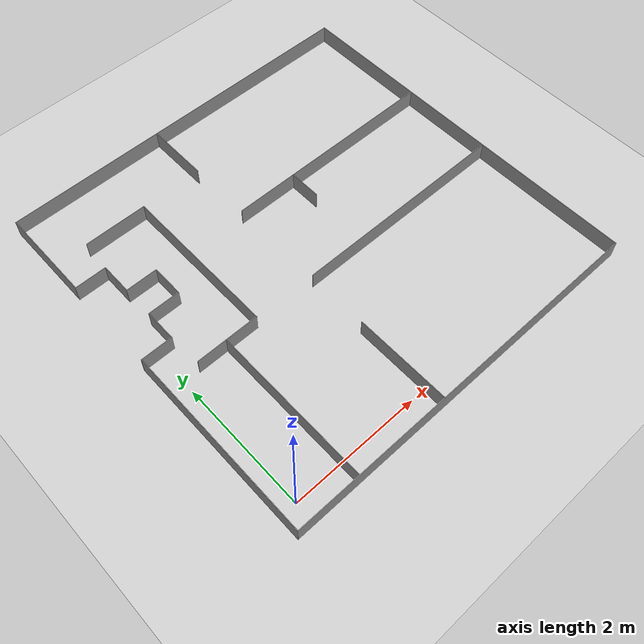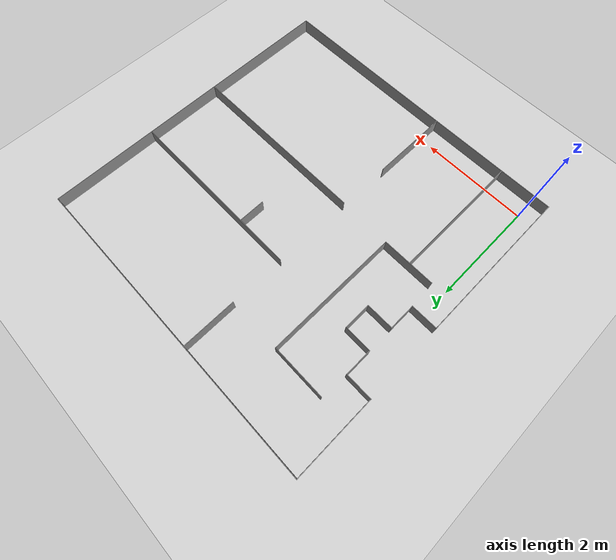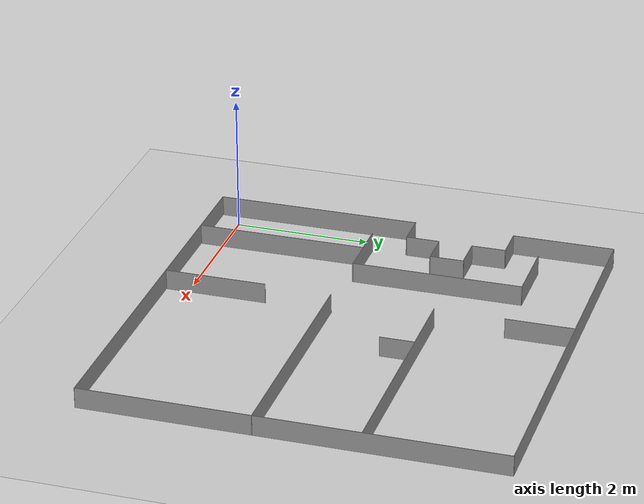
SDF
<sdf version="1.6">
 <world name="default">
  <light name="sun" type="directional">
   <pose>0 0 10 0 -0 0</pose>
   <diffuse>0.8 0.8 0.8 1</diffuse>
   <specular>0.2 0.2 0.2 1</specular>
   <attenuation>
    <range>1000</range>
    <constant>0.9</constant>
    <linear>0.01</linear>
    <quadratic>0.001</quadratic>
   </attenuation>
   <direction>-0.5 0.1 -0.9</direction>
  </light>
  <model name="ground_plane">
   <static>1</static>
   <link name="link">
    <collision name="collision">
     <geometry><plane><normal>0 0 1</normal><size>100 100</size></plane></geometry>
     <surface>
      <contact><collide_bitmask>65535</collide_bitmask></contact>
      <friction><ode><mu>100</mu><mu2>50</mu2></ode></friction>
     </surface>
    </collision>
    <visual name="visual">
     <cast_shadows>0</cast_shadows>
     <geometry><plane><normal>0 0 1</normal><size>100 100</size></plane></geometry>
     <material>
      <script><uri>file://media/materials/scripts/gazebo.material</uri><name>Gazebo/Grey</name></script>
     </material>
    </visual>
   </link>
  </model>
  <gravity>0 0 -9.8</gravity>
  <magnetic_field>6e-06 2.3e-05 -4.2e-05</magnetic_field>
  <atmosphere type="adiabatic"/>
  <physics name="default_physics" default="0" type="ode">
   <max_step_size>0.001</max_step_size>
   <real_time_factor>1</real_time_factor>
   <real_time_update_rate>1000</real_time_update_rate>
  </physics>
  <scene><ambient>0.4 0.4 0.4 1</ambient><background>0.7 0.7 0.7 1</background><shadows>1</shadows></scene>
  <audio><device>default</device></audio>
  <spherical_coordinates>
   <surface_model>EARTH_WGS84</surface_model>
   <latitude_deg>0</latitude_deg>
   <longitude_deg>0</longitude_deg>
   <elevation>0</elevation>
   <heading_deg>0</heading_deg>
  </spherical_coordinates>
  <model name="arena">
   <pose>2.72717 2.66142 0 0 -0 0</pose>
   <link name="Wall_1">
    <collision name="Wall_1_Collision">
     <geometry><box><size>6 0.01 0.3</size></box></geometry>
     <pose>0 0 0.15 0 -0 0</pose>
    </collision>
    <visual name="Wall_1_Visual">
     <pose>0 0 0.15 0 -0 0</pose>
     <geometry><box><size>6 0.01 0.3</size></box></geometry>
     <material>
      <script><uri>file://media/materials/scripts/gazebo.material</uri><name>Gazebo/Grey</name></script>
      <ambient>1 1 1 1</ambient>
     </material>
     <meta><layer>0</layer></meta>
    </visual>
    <pose>0.001988 -2.99751 0 0 -0 0</pose>
   </link>
   <link name="Wall_11">
    <collision name="Wall_11_Collision">
     <geometry><box><size>1.5 0.01 0.3</size></box></geometry>
     <pose>0 0 0.15 0 -0 0</pose>
    </collision>
    <visual name="Wall_11_Visual">
     <pose>0 0 0.15 0 -0 0</pose>
     <geometry><box><size>1.5 0.01 0.3</size></box></geometry>
     <material>
      <script><uri>file://media/materials/scripts/gazebo.material</uri><name>Gazebo/Grey</name></script>
      <ambient>1 1 1 1</ambient>
     </material>
     <meta><layer>0</layer></meta>
    </visual>
    <pose>-2.99841 2.25251 0 0 -0 1.5708</pose>
   </link>
   <link name="Wall_20">
    <collision name="Wall_20_Collision">
     <geometry><box><size>0.5 0.01 0.3</size></box></geometry>
     <pose>0 0 0.15 0 -0 0</pose>
    </collision>
    <visual name="Wall_20_Visual">
     <pose>0 0 0.15 0 -0 0</pose>
     <geometry><box><size>0.5 0.01 0.3</size></box></geometry>
     <material>
      <script><uri>file://media/materials/scripts/gazebo.material</uri><name>Gazebo/Grey</name></script>
      <ambient>1 1 1 1</ambient>
     </material>
     <meta><layer>0</layer></meta>
    </visual>
    <pose>-2.75425 1.50057 0 0 -0 0</pose>
   </link>
   <link name="Wall_22">
    <collision name="Wall_22_Collision">
     <geometry><box><size>0.5 0.01 0.3</size></box></geometry>
     <pose>0 0 0.15 0 -0 0</pose>
    </collision>
    <visual name="Wall_22_Visual">
     <pose>0 0 0.15 0 -0 0</pose>
     <geometry><box><size>0.5 0.01 0.3</size></box></geometry>
     <material>
      <script><uri>file://media/materials/scripts/gazebo.material</uri><name>Gazebo/Grey</name></script>
      <ambient>1 1 1 1</ambient>
     </material>
     <meta><layer>0</layer></meta>
    </visual>
    <pose>-2.50969 1.25495 0 0 -0 1.5708</pose>
   </link>
   <link name="Wall_24">
    <collision name="Wall_24_Collision">
     <geometry><box><size>0.5 0.01 0.3</size></box></geometry>
     <pose>0 0 0.15 0 -0 0</pose>
    </collision>
    <visual name="Wall_24_Visual">
     <pose>0 0 0.15 0 -0 0</pose>
     <geometry><box><size>0.5 0.01 0.3</size></box></geometry>
     <material>
      <script><uri>file://media/materials/scripts/gazebo.material</uri><name>Gazebo/Grey</name></script>
      <ambient>1 1 1 1</ambient>
     </material>
     <meta><layer>0</layer></meta>
    </visual>
    <pose>-2.26459 1.00122 0 0 -0 0</pose>
   </link>
   <link name="Wall_28">
    <collision name="Wall_28_Collision">
     <geometry><box><size>0.5 0.01 0.3</size></box></geometry>
     <pose>0 0 0.15 0 -0 0</pose>
    </collision>
    <visual name="Wall_28_Visual">
     <pose>0 0 0.15 0 -0 0</pose>
     <geometry><box><size>0.5 0.01 0.3</size></box></geometry>
     <material>
      <script><uri>file://media/materials/scripts/gazebo.material</uri><name>Gazebo/Grey</name></script>
      <ambient>1 1 1 1</ambient>
     </material>
     <meta><layer>0</layer></meta>
    </visual>
    <pose>-2.01503 0.755808 0 0 -0 -1.5708</pose>
   </link>
   <link name="Wall_30">
    <collision name="Wall_30_Collision">
     <geometry><box><size>0.5 0.01 0.3</size></box></geometry>
     <pose>0 0 0.15 0 -0 0</pose>
    </collision>
    <visual name="Wall_30_Visual">
     <pose>0 0 0.15 0 -0 0</pose>
     <geometry><box><size>0.5 0.01 0.3</size></box></geometry>
     <material>
      <script><uri>file://media/materials/scripts/gazebo.material</uri><name>Gazebo/Grey</name></script>
      <ambient>1 1 1 1</ambient>
     </material>
     <meta><layer>0</layer></meta>
    </visual>
    <pose>-2.25991 0.503524 0 0 -0 0</pose>
   </link>
   <link name="Wall_34">
    <collision name="Wall_34_Collision">
     <geometry><box><size>0.5 0.01 0.3</size></box></geometry>
     <pose>0 0 0.15 0 -0 0</pose>
    </collision>
    <visual name="Wall_34_Visual">
     <pose>0 0 0.15 0 -0 0</pose>
     <geometry><box><size>0.5 0.01 0.3</size></box></geometry>
     <material>
      <script><uri>file://media/materials/scripts/gazebo.material</uri><name>Gazebo/Grey</name></script>
      <ambient>1 1 1 1</ambient>
     </material>
     <meta><layer>0</layer></meta>
    </visual>
    <pose>-2.50907 0.257403 0 0 -0 -1.5708</pose>
   </link>
   <link name="Wall_36">
    <collision name="Wall_36_Collision">
     <geometry><box><size>0.5 0.01 0.3</size></box></geometry>
     <pose>0 0 0.15 0 -0 0</pose>
    </collision>
    <visual name="Wall_36_Visual">
     <pose>0 0 0.15 0 -0 0</pose>
     <geometry><box><size>0.5 0.01 0.3</size></box></geometry>
     <material>
      <script><uri>file://media/materials/scripts/gazebo.material</uri><name>Gazebo/Grey</name></script>
      <ambient>1 1 1 1</ambient>
     </material>
     <meta><layer>0</layer></meta>
    </visual>
    <pose>-2.75227 0.011599 0 0 -0 0</pose>
   </link>
   <link name="Wall_38">
    <collision name="Wall_38_Collision">
     <geometry><box><size>3.012 0.01 0.3</size></box></geometry>
     <pose>0 0 0.15 0 -0 0</pose>
    </collision>
    <visual name="Wall_38_Visual">
     <pose>0 0 0.15 0 -0 0</pose>
     <geometry><box><size>3.012 0.01 0.3</size></box></geometry>
     <material>
      <script><uri>file://media/materials/scripts/gazebo.material</uri><name>Gazebo/Grey</name></script>
      <ambient>1 1 1 1</ambient>
     </material>
     <meta><layer>0</layer></meta>
    </visual>
    <pose>-2.99601 -1.49551 0 0 -0 -1.5708</pose>
   </link>
   <link name="Wall_41">
    <collision name="Wall_41_Collision">
     <geometry><box><size>1 0.01 0.3</size></box></geometry>
     <pose>0 0 0.15 0 -0 0</pose>
    </collision>
    <visual name="Wall_41_Visual">
     <pose>0 0 0.15 0 -0 0</pose>
     <geometry><box><size>1 0.01 0.3</size></box></geometry>
     <material>
      <script><uri>file://media/materials/scripts/gazebo.material</uri><name>Gazebo/Grey</name></script>
      <ambient>1 1 1 1</ambient>
     </material>
     <meta><layer>0</layer></meta>
    </visual>
    <pose>-0.498279 2.49812 0 0 -0 1.5708</pose>
   </link>
   <link name="Wall_44">
    <collision name="Wall_44_Collision">
     <geometry><box><size>3.5 0.01 0.3</size></box></geometry>
     <pose>0 0 0.15 0 -0 0</pose>
    </collision>
    <visual name="Wall_44_Visual">
     <pose>0 0 0.15 0 -0 0</pose>
     <geometry><box><size>3.5 0.01 0.3</size></box></geometry>
     <material>
      <script><uri>file://media/materials/scripts/gazebo.material</uri><name>Gazebo/Grey</name></script>
      <ambient>1 1 1 1</ambient>
     </material>
     <meta><layer>0</layer></meta>
    </visual>
    <pose>1.25071 0.982331 0 0 -0 0</pose>
   </link>
   <link name="Wall_46">
    <collision name="Wall_46_Collision">
     <geometry><box><size>0.5 0.01 0.3</size></box></geometry>
     <pose>0 0 0.15 0 -0 0</pose>
    </collision>
    <visual name="Wall_46_Visual">
     <pose>0 0 0.15 0 -0 0</pose>
     <geometry><box><size>0.5 0.01 0.3</size></box></geometry>
     <material>
      <script><uri>file://media/materials/scripts/gazebo.material</uri><name>Gazebo/Grey</name></script>
      <ambient>1 1 1 1</ambient>
     </material>
     <meta><layer>0</layer></meta>
    </visual>
    <pose>0.496275 0.729352 0 0 -0 1.5708</pose>
   </link>
   <link name="Wall_48">
    <collision name="Wall_48_Collision">
     <geometry><box><size>3.5 0.01 0.3</size></box></geometry>
     <pose>0 0 0.15 0 -0 0</pose>
    </collision>
    <visual name="Wall_48_Visual">
     <pose>0 0 0.15 0 -0 0</pose>
     <geometry><box><size>3.5 0.01 0.3</size></box></geometry>
     <material>
      <script><uri>file://media/materials/scripts/gazebo.material</uri><name>Gazebo/Grey</name></script>
      <ambient>1 1 1 1</ambient>
     </material>
     <meta><layer>0</layer></meta>
    </visual>
    <pose>1.25425 -0.520404 0 0 -0 0</pose>
   </link>
   <link name="Wall_50">
    <collision name="Wall_50_Collision">
     <geometry><box><size>1.5 0.01 0.3</size></box></geometry>
     <pose>0 0 0.15 0 -0 0</pose>
    </collision>
    <visual name="Wall_50_Visual">
     <pose>0 0 0.15 0 -0 0</pose>
     <geometry><box><size>1.5 0.01 0.3</size></box></geometry>
     <material>
      <script><uri>file://media/materials/scripts/gazebo.material</uri><name>Gazebo/Grey</name></script>
      <ambient>1 1 1 1</ambient>
     </material>
     <meta><layer>0</layer></meta>
    </visual>
    <pose>-0.512233 -2.25115 0 0 -0 -1.5708</pose>
   </link>
   <link name="Wall_52">
    <collision name="Wall_52_Collision">
     <geometry><box><size>2.5 0.01 0.3</size></box></geometry>
     <pose>0 0 0.15 0 -0 0</pose>
    </collision>
    <visual name="Wall_52_Visual">
     <pose>0 0 0.15 0 -0 0</pose>
     <geometry><box><size>2.5 0.01 0.3</size></box></geometry>
     <material>
      <script><uri>file://media/materials/scripts/gazebo.material</uri><name>Gazebo/Grey</name></script>
      <ambient>1 1 1 1</ambient>
     </material>
     <meta><layer>0</layer></meta>
    </visual>
    <pose>-2.00505 -1.74423 0 0 -0 -1.5708</pose>
   </link>
   <link name="Wall_54">
    <collision name="Wall_54_Collision">
     <geometry><box><size>1 0.01 0.3</size></box></geometry>
     <pose>0 0 0.15 0 -0 0</pose>
    </collision>
    <visual name="Wall_54_Visual">
     <pose>0 0 0.15 0 -0 0</pose>
     <geometry><box><size>1 0.01 0.3</size></box></geometry>
     <material>
      <script><uri>file://media/materials/scripts/gazebo.material</uri><name>Gazebo/Grey</name></script>
      <ambient>1 1 1 1</ambient>
     </material>
     <meta><layer>0</layer></meta>
    </visual>
    <pose>-1.98078 -0.499121 0 0 -0 0</pose>
   </link>
   <link name="Wall_56">
    <collision name="Wall_56_Collision">
     <geometry><box><size>2.5 0.01 0.3</size></box></geometry>
     <pose>0 0 0.15 0 -0 0</pose>
    </collision>
    <visual name="Wall_56_Visual">
     <pose>0 0 0.15 0 -0 0</pose>
     <geometry><box><size>2.5 0.01 0.3</size></box></geometry>
     <material>
      <script><uri>file://media/materials/scripts/gazebo.material</uri><name>Gazebo/Grey</name></script>
      <ambient>1 1 1 1</ambient>
     </material>
     <meta><layer>0</layer></meta>
    </visual>
    <pose>-1.48616 0.751059 0 0 -0 -1.5708</pose>
   </link>
   <link name="Wall_58">
    <collision name="Wall_58_Collision">
     <geometry><box><size>1 0.01 0.3</size></box></geometry>
     <pose>0 0 0.15 0 -0 0</pose>
    </collision>
    <visual name="Wall_58_Visual">
     <pose>0 0 0.15 0 -0 0</pose>
     <geometry><box><size>1 0.01 0.3</size></box></geometry>
     <material>
      <script><uri>file://media/materials/scripts/gazebo.material</uri><name>Gazebo/Grey</name></script>
      <ambient>1 1 1 1</ambient>
     </material>
     <meta><layer>0</layer></meta>
    </visual>
    <pose>-1.9786 2.00012 0 0 -0 0</pose>
   </link>
   <link name="Wall_6">
    <collision name="Wall_6_Collision">
     <geometry><box><size>6 0.01 0.3</size></box></geometry>
     <pose>0 0 0.15 0 -0 0</pose>
    </collision>
    <visual name="Wall_6_Visual">
     <pose>0 0 0.15 0 -0 0</pose>
     <geometry><box><size>6 0.01 0.3</size></box></geometry>
     <material>
      <script><uri>file://media/materials/scripts/gazebo.material</uri><name>Gazebo/Grey</name></script>
      <ambient>1 1 1 1</ambient>
     </material>
     <meta><layer>0</layer></meta>
    </visual>
    <pose>2.99837 -0.000334 0 0 -0 -1.5708</pose>
   </link>
   <link name="Wall_8">
    <collision name="Wall_8_Collision">
     <geometry><box><size>6 0.01 0.3</size></box></geometry>
     <pose>0 0 0.15 0 -0 0</pose>
    </collision>
    <visual name="Wall_8_Visual">
     <pose>0 0 0.15 0 -0 0</pose>
     <geometry><box><size>6 0.01 0.3</size></box></geometry>
     <material>
      <script><uri>file://media/materials/scripts/gazebo.material</uri><name>Gazebo/Grey</name></script>
      <ambient>1 1 1 1</ambient>
     </material>
     <meta><layer>0</layer></meta>
    </visual>
    <pose>-0.003034 2.99691 0 0 -0 0</pose>
   </link>
   <static>1</static>
  </model>
 </world>
</sdf>
